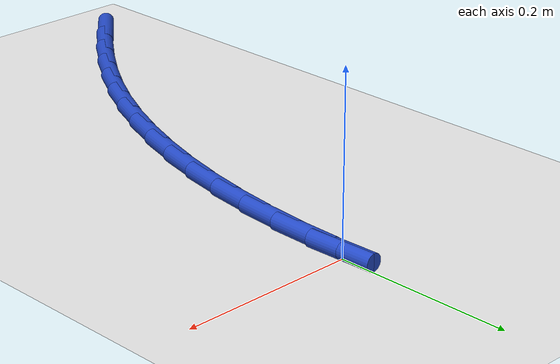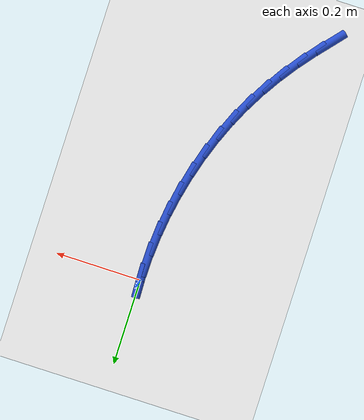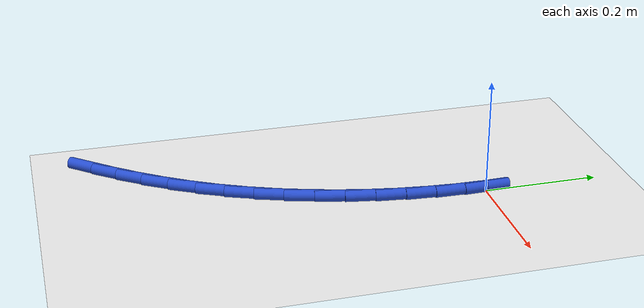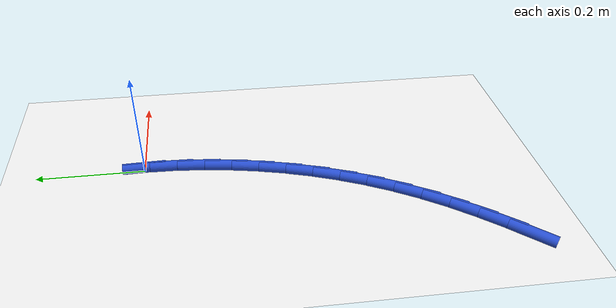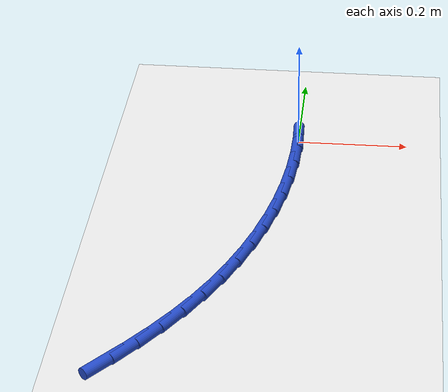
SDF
<sdf version="1.6">
 <world name="default">
  <model name="ground_plane">
   <static>1</static>
   <link name="link">
    <collision name="collision">
     <geometry><plane><normal>0 0 1</normal><size>100 100</size></plane></geometry>
     <surface><friction><ode><mu>100</mu><mu2>50</mu2></ode></friction></surface>
    </collision>
    <visual name="visual">
     <cast_shadows>0</cast_shadows>
     <geometry><plane><normal>0 0 1</normal><size>100 100</size></plane></geometry>
     <material>
      <script><uri>file://media/materials/scripts/gazebo.material</uri><name>Gazebo/WhiteGlow</name></script>
     </material>
    </visual>
   </link>
  </model>
  <model name="line">
   <link name="link_0">
    <pose>2.2551405187698492e-17 1.5265566588595902e-16 0.01 0 1.57 -1.5366977185228097</pose>
    <collision name="collision">
     <geometry><cylinder><radius>0.01</radius><length>0.08</length></cylinder></geometry>
    </collision>
    <visual name="visual">
     <material>
      <script><name>Gazebo/Blue</name><uri>file://media/materials/scripts/gazebo.material</uri></script>
     </material>
     <geometry><cylinder><radius>0.01</radius><length>0.08</length></cylinder></geometry>
    </visual>
   </link>
   <link name="link_116">
    <pose>-0.24531335180633965 -0.6456598505611202 0.01 0 1.57 0.8610309554740377</pose>
    <collision name="collision">
     <geometry><cylinder><radius>0.01</radius><length>0.08</length></cylinder></geometry>
    </collision>
    <visual name="visual">
     <material>
      <script><name>Gazebo/Blue</name><uri>file://media/materials/scripts/gazebo.material</uri></script>
     </material>
     <geometry><cylinder><radius>0.01</radius><length>0.08</length></cylinder></geometry>
    </visual>
   </link>
   <link name="link_117">
    <pose>-0.2125904461479274 -0.6075710200818351 0.01 0 1.57 0.9055448093294165</pose>
    <collision name="collision">
     <geometry><cylinder><radius>0.01</radius><length>0.08</length></cylinder></geometry>
    </collision>
    <visual name="visual">
     <material>
      <script><name>Gazebo/Blue</name><uri>file://media/materials/scripts/gazebo.material</uri></script>
     </material>
     <geometry><cylinder><radius>0.01</radius><length>0.08</length></cylinder></geometry>
    </visual>
   </link>
   <link name="link_118">
    <pose>-0.18171154694144157 -0.5682124879871321 0.01 0 1.57 0.9548539434154991</pose>
    <collision name="collision">
     <geometry><cylinder><radius>0.01</radius><length>0.08</length></cylinder></geometry>
    </collision>
    <visual name="visual">
     <material>
      <script><name>Gazebo/Blue</name><uri>file://media/materials/scripts/gazebo.material</uri></script>
     </material>
     <geometry><cylinder><radius>0.01</radius><length>0.08</length></cylinder></geometry>
    </visual>
   </link>
   <link name="link_119">
    <pose>-0.15287250655775514 -0.5274679290625347 0.01 0 1.57 1.0088167569340372</pose>
    <collision name="collision">
     <geometry><cylinder><radius>0.01</radius><length>0.08</length></cylinder></geometry>
    </collision>
    <visual name="visual">
     <material>
      <script><name>Gazebo/Blue</name><uri>file://media/materials/scripts/gazebo.material</uri></script>
     </material>
     <geometry><cylinder><radius>0.01</radius><length>0.08</length></cylinder></geometry>
    </visual>
   </link>
   <link name="link_120">
    <pose>-0.12626917736773965 -0.48522101809356427 0.01 0 1.57 1.067000981034841</pose>
    <collision name="collision">
     <geometry><cylinder><radius>0.01</radius><length>0.08</length></cylinder></geometry>
    </collision>
    <visual name="visual">
     <material>
      <script><name>Gazebo/Blue</name><uri>file://media/materials/scripts/gazebo.material</uri></script>
     </material>
     <geometry><cylinder><radius>0.01</radius><length>0.08</length></cylinder></geometry>
    </visual>
   </link>
   <link name="link_121">
    <pose>-0.10209293940631906 -0.44136316557560556 0.01 0 1.57 1.12603018638862</pose>
    <collision name="collision">
     <geometry><cylinder><radius>0.01</radius><length>0.08</length></cylinder></geometry>
    </collision>
    <visual name="visual">
     <material>
      <script><name>Gazebo/Blue</name><uri>file://media/materials/scripts/gazebo.material</uri></script>
     </material>
     <geometry><cylinder><radius>0.01</radius><length>0.08</length></cylinder></geometry>
    </visual>
   </link>
   <link name="link_122">
    <pose>-0.08044464935478239 -0.395942358434702 0.01 0 1.57 1.1831700086609789</pose>
    <collision name="collision">
     <geometry><cylinder><radius>0.01</radius><length>0.08</length></cylinder></geometry>
    </collision>
    <visual name="visual">
     <material>
      <script><name>Gazebo/Blue</name><uri>file://media/materials/scripts/gazebo.material</uri></script>
     </material>
     <geometry><cylinder><radius>0.01</radius><length>0.08</length></cylinder></geometry>
    </visual>
   </link>
   <link name="link_123">
    <pose>-0.0613410078272745 -0.3491521466597157 0.01 0 1.57 1.2385994736826487</pose>
    <collision name="collision">
     <geometry><cylinder><radius>0.01</radius><length>0.08</length></cylinder></geometry>
    </collision>
    <visual name="visual">
     <material>
      <script><name>Gazebo/Blue</name><uri>file://media/materials/scripts/gazebo.material</uri></script>
     </material>
     <geometry><cylinder><radius>0.01</radius><length>0.08</length></cylinder></geometry>
    </visual>
   </link>
   <link name="link_124">
    <pose>-0.04479551868323014 -0.30119160960207075 0.01 0 1.57 1.2926228201124486</pose>
    <collision name="collision">
     <geometry><cylinder><radius>0.01</radius><length>0.08</length></cylinder></geometry>
    </collision>
    <visual name="visual">
     <material>
      <script><name>Gazebo/Blue</name><uri>file://media/materials/scripts/gazebo.material</uri></script>
     </material>
     <geometry><cylinder><radius>0.01</radius><length>0.08</length></cylinder></geometry>
    </visual>
   </link>
   <link name="link_125">
    <pose>-0.030821685782083007 -0.25225982661318846 0.01 0 1.57 1.3455542543340198</pose>
    <collision name="collision">
     <geometry><cylinder><radius>0.01</radius><length>0.08</length></cylinder></geometry>
    </collision>
    <visual name="visual">
     <material>
      <script><name>Gazebo/Blue</name><uri>file://media/materials/scripts/gazebo.material</uri></script>
     </material>
     <geometry><cylinder><radius>0.01</radius><length>0.08</length></cylinder></geometry>
    </visual>
   </link>
   <link name="link_126">
    <pose>-0.019433012983267127 -0.20255587704449066 0.01 0 1.57 1.397714175834499</pose>
    <collision name="collision">
     <geometry><cylinder><radius>0.01</radius><length>0.08</length></cylinder></geometry>
    </collision>
    <visual name="visual">
     <material>
      <script><name>Gazebo/Blue</name><uri>file://media/materials/scripts/gazebo.material</uri></script>
     </material>
     <geometry><cylinder><radius>0.01</radius><length>0.08</length></cylinder></geometry>
    </visual>
   </link>
   <link name="link_127">
    <pose>-0.01064300414621688 -0.15227884024740096 0.01 0 1.57 1.4494271224906872</pose>
    <collision name="collision">
     <geometry><cylinder><radius>0.01</radius><length>0.08</length></cylinder></geometry>
    </collision>
    <visual name="visual">
     <material>
      <script><name>Gazebo/Blue</name><uri>file://media/materials/scripts/gazebo.material</uri></script>
     </material>
     <geometry><cylinder><radius>0.01</radius><length>0.08</length></cylinder></geometry>
    </visual>
   </link>
   <link name="link_128">
    <pose>-0.00446516313036621 -0.10162779557334109 0.01 0 1.57 1.5010209238915546</pose>
    <collision name="collision">
     <geometry><cylinder><radius>0.01</radius><length>0.08</length></cylinder></geometry>
    </collision>
    <visual name="visual">
     <material>
      <script><name>Gazebo/Blue</name><uri>file://media/materials/scripts/gazebo.material</uri></script>
     </material>
     <geometry><cylinder><radius>0.01</radius><length>0.08</length></cylinder></geometry>
    </visual>
   </link>
   <link name="link_129">
    <pose>-0.0009129937951492129 -0.05080182237373327 0.01 0 1.57 1.5528265871615525</pose>
    <collision name="collision">
     <geometry><cylinder><radius>0.01</radius><length>0.08</length></cylinder></geometry>
    </collision>
    <visual name="visual">
     <material>
      <script><name>Gazebo/Blue</name><uri>file://media/materials/scripts/gazebo.material</uri></script>
     </material>
     <geometry><cylinder><radius>0.01</radius><length>0.08</length></cylinder></geometry>
    </visual>
   </link>
   <link name="link_130">
    <pose>1.0408340855860843e-17 9.71445146547012e-17 0.01 0 1.57 -1.5364141907458755</pose>
    <collision name="collision">
     <geometry><cylinder><radius>0.01</radius><length>0.08</length></cylinder></geometry>
    </collision>
    <visual name="visual">
     <material>
      <script><name>Gazebo/Blue</name><uri>file://media/materials/scripts/gazebo.material</uri></script>
     </material>
     <geometry><cylinder><radius>0.01</radius><length>0.08</length></cylinder></geometry>
    </visual>
   </link>
  </model>
 </world>
</sdf>
